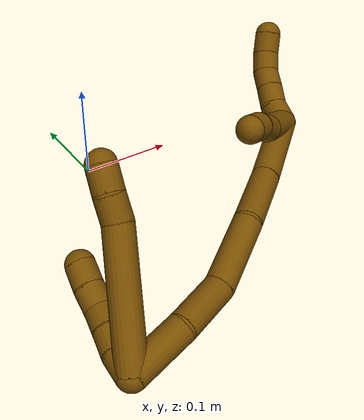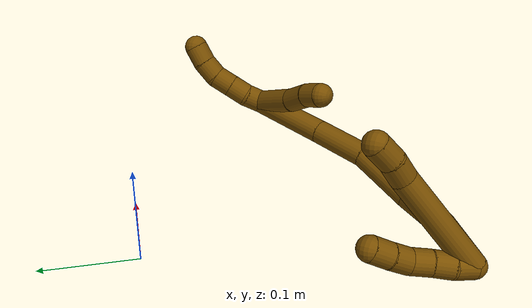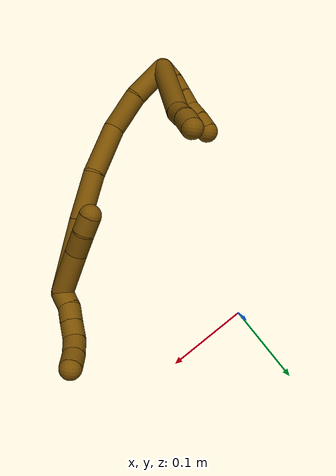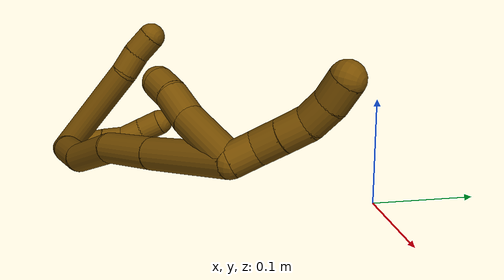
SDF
<sdf version="1.7">
 <world name="default">
  <model name="12">
   <static>0</static>
   <link name="12">
    <collision name="collision-cylinder-e_1_2_8">
     <pose>0.026532 0.038018 -0.026238 -2.17488 0.521361 -0.940384</pose>
     <geometry><cylinder><radius>0.0125</radius><length>0.106541</length></cylinder></geometry>
     <surface>
      <friction><ode><mu>1.16</mu><mu2>1.16</mu2><slip1>0</slip1><slip2>0</slip2></ode></friction>
      <contact><ode><kp>1e+06</kp><kd>1</kd><max_vel>0</max_vel><min_depth>0.001</min_depth></ode></contact>
     </surface>
    </collision>
    <visual name="visual-cylinder-e_1_2_8">
     <pose>0.026532 0.038018 -0.026238 -2.17488 0.521361 -0.940384</pose>
     <geometry><cylinder><radius>0.0125</radius><length>0.106541</length></cylinder></geometry>
     <material><ambient>0.466667 0.301961 0 1</ambient></material>
    </visual>
    <collision name="collision-cylinder-e_2_8_9">
     <pose>0.057819 0.085279 -0.055458 -1.88287 0.45527 -0.616033</pose>
     <geometry><cylinder><radius>0.0125</radius><length>0.021627</length></cylinder></geometry>
     <surface>
      <friction><ode><mu>1.16</mu><mu2>1.16</mu2><slip1>0</slip1><slip2>0</slip2></ode></friction>
      <contact><ode><kp>1e+06</kp><kd>1</kd><max_vel>0</max_vel><min_depth>0.001</min_depth></ode></contact>
     </surface>
    </collision>
    <visual name="visual-cylinder-e_2_8_9">
     <pose>0.057819 0.085279 -0.055458 -1.88287 0.45527 -0.616033</pose>
     <geometry><cylinder><radius>0.0125</radius><length>0.021627</length></cylinder></geometry>
     <material><ambient>0.466667 0.301961 0 1</ambient></material>
    </visual>
    <collision name="collision-cylinder-e_3_9_6">
     <pose>0.066629 0.103424 -0.063284 -2.06914 0.380696 -0.627029</pose>
     <geometry><cylinder><radius>0.0125</radius><length>0.021832</length></cylinder></geometry>
     <surface>
      <friction><ode><mu>1.16</mu><mu2>1.16</mu2><slip1>0</slip1><slip2>0</slip2></ode></friction>
      <contact><ode><kp>1e+06</kp><kd>1</kd><max_vel>0</max_vel><min_depth>0.001</min_depth></ode></contact>
     </surface>
    </collision>
    <visual name="visual-cylinder-e_3_9_6">
     <pose>0.066629 0.103424 -0.063284 -2.06914 0.380696 -0.627029</pose>
     <geometry><cylinder><radius>0.0125</radius><length>0.021832</length></cylinder></geometry>
     <material><ambient>0.466667 0.301961 0 1</ambient></material>
    </visual>
    <collision name="collision-cylinder-e_1_2_10">
     <pose>-0.002752 0.006932 -0.006661 -2.33628 -0.278808 0.636472</pose>
     <geometry><cylinder><radius>0.0125</radius><length>0.02</length></cylinder></geometry>
     <surface>
      <friction><ode><mu>1.16</mu><mu2>1.16</mu2><slip1>0</slip1><slip2>0</slip2></ode></friction>
      <contact><ode><kp>1e+06</kp><kd>1</kd><max_vel>0</max_vel><min_depth>0.001</min_depth></ode></contact>
     </surface>
    </collision>
    <visual name="visual-cylinder-e_1_2_10">
     <pose>-0.002752 0.006932 -0.006661 -2.33628 -0.278808 0.636472</pose>
     <geometry><cylinder><radius>0.0125</radius><length>0.02</length></cylinder></geometry>
     <material><ambient>0.466667 0.301961 0 1</ambient></material>
    </visual>
    <collision name="collision-cylinder-e_2_10_11">
     <pose>-0.006867 0.020219 -0.020922 -2.44515 -0.136739 0.372885</pose>
     <geometry><cylinder><radius>0.0125</radius><length>0.02</length></cylinder></geometry>
     <surface>
      <friction><ode><mu>1.16</mu><mu2>1.16</mu2><slip1>0</slip1><slip2>0</slip2></ode></friction>
      <contact><ode><kp>1e+06</kp><kd>1</kd><max_vel>0</max_vel><min_depth>0.001</min_depth></ode></contact>
     </surface>
    </collision>
    <visual name="visual-cylinder-e_2_10_11">
     <pose>-0.006867 0.020219 -0.020922 -2.44515 -0.136739 0.372885</pose>
     <geometry><cylinder><radius>0.0125</radius><length>0.02</length></cylinder></geometry>
     <material><ambient>0.466667 0.301961 0 1</ambient></material>
    </visual>
    <collision name="collision-cylinder-e_3_11_12">
     <pose>-0.010182 0.032542 -0.036305 -2.48741 -0.19639 0.565177</pose>
     <geometry><cylinder><radius>0.0125</radius><length>0.02</length></cylinder></geometry>
     <surface>
      <friction><ode><mu>1.16</mu><mu2>1.16</mu2><slip1>0</slip1><slip2>0</slip2></ode></friction>
      <contact><ode><kp>1e+06</kp><kd>1</kd><max_vel>0</max_vel><min_depth>0.001</min_depth></ode></contact>
     </surface>
    </collision>
    <visual name="visual-cylinder-e_3_11_12">
     <pose>-0.010182 0.032542 -0.036305 -2.48741 -0.19639 0.565177</pose>
     <geometry><cylinder><radius>0.0125</radius><length>0.02</length></cylinder></geometry>
     <material><ambient>0.466667 0.301961 0 1</ambient></material>
    </visual>
    <collision name="collision-cylinder-e_4_12_13">
     <pose>-0.01222 0.046637 -0.049915 -2.19283 -0.0087 0.016943</pose>
     <geometry><cylinder><radius>0.0125</radius><length>0.02</length></cylinder></geometry>
     <surface>
      <friction><ode><mu>1.16</mu><mu2>1.16</mu2><slip1>0</slip1><slip2>0</slip2></ode></friction>
      <contact><ode><kp>1e+06</kp><kd>1</kd><max_vel>0</max_vel><min_depth>0.001</min_depth></ode></contact>
     </surface>
    </collision>
    <visual name="visual-cylinder-e_4_12_13">
     <pose>-0.01222 0.046637 -0.049915 -2.19283 -0.0087 0.016943</pose>
     <geometry><cylinder><radius>0.0125</radius><length>0.02</length></cylinder></geometry>
     <material><ambient>0.466667 0.301961 0 1</ambient></material>
    </visual>
    <collision name="collision-cylinder-e_5_13_5">
     <pose>-0.011856 0.062477 -0.062089 -2.25935 0.045092 -0.095447</pose>
     <geometry><cylinder><radius>0.0125</radius><length>0.02</length></cylinder></geometry>
     <surface>
      <friction><ode><mu>1.16</mu><mu2>1.16</mu2><slip1>0</slip1><slip2>0</slip2></ode></friction>
      <contact><ode><kp>1e+06</kp><kd>1</kd><max_vel>0</max_vel><min_depth>0.001</min_depth></ode></contact>
     </surface>
    </collision>
    <visual name="visual-cylinder-e_5_13_5">
     <pose>-0.011856 0.062477 -0.062089 -2.25935 0.045092 -0.095447</pose>
     <geometry><cylinder><radius>0.0125</radius><length>0.02</length></cylinder></geometry>
     <material><ambient>0.466667 0.301961 0 1</ambient></material>
    </visual>
    <collision name="collision-cylinder-e_1_2_14">
     <pose>0.01557 -0.005184 -0.019125 2.87688 0.666015 2.40674</pose>
     <geometry><cylinder><radius>0.0125</radius><length>0.050401</length></cylinder></geometry>
     <surface>
      <friction><ode><mu>1.16</mu><mu2>1.16</mu2><slip1>0</slip1><slip2>0</slip2></ode></friction>
      <contact><ode><kp>1e+06</kp><kd>1</kd><max_vel>0</max_vel><min_depth>0.001</min_depth></ode></contact>
     </surface>
    </collision>
    <visual name="visual-cylinder-e_1_2_14">
     <pose>0.01557 -0.005184 -0.019125 2.87688 0.666015 2.40674</pose>
     <geometry><cylinder><radius>0.0125</radius><length>0.050401</length></cylinder></geometry>
     <material><ambient>0.466667 0.301961 0 1</ambient></material>
    </visual>
    <collision name="collision-cylinder-e_2_14_15">
     <pose>0.041191 -0.014997 -0.058955 2.92165 0.442378 2.22872</pose>
     <geometry><cylinder><radius>0.0125</radius><length>0.046953</length></cylinder></geometry>
     <surface>
      <friction><ode><mu>1.16</mu><mu2>1.16</mu2><slip1>0</slip1><slip2>0</slip2></ode></friction>
      <contact><ode><kp>1e+06</kp><kd>1</kd><max_vel>0</max_vel><min_depth>0.001</min_depth></ode></contact>
     </surface>
    </collision>
    <visual name="visual-cylinder-e_2_14_15">
     <pose>0.041191 -0.014997 -0.058955 2.92165 0.442378 2.22872</pose>
     <geometry><cylinder><radius>0.0125</radius><length>0.046953</length></cylinder></geometry>
     <material><ambient>0.466667 0.301961 0 1</ambient></material>
    </visual>
    <collision name="collision-cylinder-e_3_15_16">
     <pose>0.067136 -0.015413 -0.106388 -2.98527 0.531152 -2.58086</pose>
     <geometry><cylinder><radius>0.0125</radius><length>0.062762</length></cylinder></geometry>
     <surface>
      <friction><ode><mu>1.16</mu><mu2>1.16</mu2><slip1>0</slip1><slip2>0</slip2></ode></friction>
      <contact><ode><kp>1e+06</kp><kd>1</kd><max_vel>0</max_vel><min_depth>0.001</min_depth></ode></contact>
     </surface>
    </collision>
    <visual name="visual-cylinder-e_3_15_16">
     <pose>0.067136 -0.015413 -0.106388 -2.98527 0.531152 -2.58086</pose>
     <geometry><cylinder><radius>0.0125</radius><length>0.062762</length></cylinder></geometry>
     <material><ambient>0.466667 0.301961 0 1</ambient></material>
    </visual>
    <collision name="collision-cylinder-e_4_16_17">
     <pose>0.091237 -0.009543 -0.160513 -3.08115 0.290501 -2.73402</pose>
     <geometry><cylinder><radius>0.0125</radius><length>0.057296</length></cylinder></geometry>
     <surface>
      <friction><ode><mu>1.16</mu><mu2>1.16</mu2><slip1>0</slip1><slip2>0</slip2></ode></friction>
      <contact><ode><kp>1e+06</kp><kd>1</kd><max_vel>0</max_vel><min_depth>0.001</min_depth></ode></contact>
     </surface>
    </collision>
    <visual name="visual-cylinder-e_4_16_17">
     <pose>0.091237 -0.009543 -0.160513 -3.08115 0.290501 -2.73402</pose>
     <geometry><cylinder><radius>0.0125</radius><length>0.057296</length></cylinder></geometry>
     <material><ambient>0.466667 0.301961 0 1</ambient></material>
    </visual>
    <collision name="collision-cylinder-e_5_17_1">
     <pose>0.110658 -0.003835 -0.227445 -3.03952 0.275046 -2.43442</pose>
     <geometry><cylinder><radius>0.0125</radius><length>0.082588</length></cylinder></geometry>
     <surface>
      <friction><ode><mu>1.16</mu><mu2>1.16</mu2><slip1>0</slip1><slip2>0</slip2></ode></friction>
      <contact><ode><kp>1e+06</kp><kd>1</kd><max_vel>0</max_vel><min_depth>0.001</min_depth></ode></contact>
     </surface>
    </collision>
    <visual name="visual-cylinder-e_5_17_1">
     <pose>0.110658 -0.003835 -0.227445 -3.03952 0.275046 -2.43442</pose>
     <geometry><cylinder><radius>0.0125</radius><length>0.082588</length></cylinder></geometry>
     <material><ambient>0.466667 0.301961 0 1</ambient></material>
    </visual>
    <collision name="collision-cylinder-e_1_1_18">
     <pose>0.122596 0.00789 -0.273349 -2.26336 0.072399 -0.153902</pose>
     <geometry><cylinder><radius>0.0125</radius><length>0.02</length></cylinder></geometry>
     <surface>
      <friction><ode><mu>1.16</mu><mu2>1.16</mu2><slip1>0</slip1><slip2>0</slip2></ode></friction>
      <contact><ode><kp>1e+06</kp><kd>1</kd><max_vel>0</max_vel><min_depth>0.001</min_depth></ode></contact>
     </surface>
    </collision>
    <visual name="visual-cylinder-e_1_1_18">
     <pose>0.122596 0.00789 -0.273349 -2.26336 0.072399 -0.153902</pose>
     <geometry><cylinder><radius>0.0125</radius><length>0.02</length></cylinder></geometry>
     <material><ambient>0.466667 0.301961 0 1</ambient></material>
    </visual>
    <collision name="collision-cylinder-e_2_18_19">
     <pose>0.126071 0.021666 -0.287148 -2.45427 0.278753 -0.747199</pose>
     <geometry><cylinder><radius>0.0125</radius><length>0.02</length></cylinder></geometry>
     <surface>
      <friction><ode><mu>1.16</mu><mu2>1.16</mu2><slip1>0</slip1><slip2>0</slip2></ode></friction>
      <contact><ode><kp>1e+06</kp><kd>1</kd><max_vel>0</max_vel><min_depth>0.001</min_depth></ode></contact>
     </surface>
    </collision>
    <visual name="visual-cylinder-e_2_18_19">
     <pose>0.126071 0.021666 -0.287148 -2.45427 0.278753 -0.747199</pose>
     <geometry><cylinder><radius>0.0125</radius><length>0.02</length></cylinder></geometry>
     <material><ambient>0.466667 0.301961 0 1</ambient></material>
    </visual>
    <collision name="collision-cylinder-e_3_19_20">
     <pose>0.131443 0.034131 -0.301833 -2.42131 0.265165 -0.680759</pose>
     <geometry><cylinder><radius>0.0125</radius><length>0.02</length></cylinder></geometry>
     <surface>
      <friction><ode><mu>1.16</mu><mu2>1.16</mu2><slip1>0</slip1><slip2>0</slip2></ode></friction>
      <contact><ode><kp>1e+06</kp><kd>1</kd><max_vel>0</max_vel><min_depth>0.001</min_depth></ode></contact>
     </surface>
    </collision>
    <visual name="visual-cylinder-e_3_19_20">
     <pose>0.131443 0.034131 -0.301833 -2.42131 0.265165 -0.680759</pose>
     <geometry><cylinder><radius>0.0125</radius><length>0.02</length></cylinder></geometry>
     <material><ambient>0.466667 0.301961 0 1</ambient></material>
    </visual>
    <collision name="collision-cylinder-e_4_20_21">
     <pose>0.139424 0.046615 -0.314904 -2.33099 0.565728 -1.19085</pose>
     <geometry><cylinder><radius>0.0125</radius><length>0.02</length></cylinder></geometry>
     <surface>
      <friction><ode><mu>1.16</mu><mu2>1.16</mu2><slip1>0</slip1><slip2>0</slip2></ode></friction>
      <contact><ode><kp>1e+06</kp><kd>1</kd><max_vel>0</max_vel><min_depth>0.001</min_depth></ode></contact>
     </surface>
    </collision>
    <visual name="visual-cylinder-e_4_20_21">
     <pose>0.139424 0.046615 -0.314904 -2.33099 0.565728 -1.19085</pose>
     <geometry><cylinder><radius>0.0125</radius><length>0.02</length></cylinder></geometry>
     <material><ambient>0.466667 0.301961 0 1</ambient></material>
    </visual>
    <collision name="collision-cylinder-e_5_21_4">
     <pose>0.151667 0.058457 -0.325178 -2.23236 0.758995 -1.36884</pose>
     <geometry><cylinder><radius>0.0125</radius><length>0.02</length></cylinder></geometry>
     <surface>
      <friction><ode><mu>1.16</mu><mu2>1.16</mu2><slip1>0</slip1><slip2>0</slip2></ode></friction>
      <contact><ode><kp>1e+06</kp><kd>1</kd><max_vel>0</max_vel><min_depth>0.001</min_depth></ode></contact>
     </surface>
    </collision>
    <visual name="visual-cylinder-e_5_21_4">
     <pose>0.151667 0.058457 -0.325178 -2.23236 0.758995 -1.36884</pose>
     <geometry><cylinder><radius>0.0125</radius><length>0.02</length></cylinder></geometry>
     <material><ambient>0.466667 0.301961 0 1</ambient></material>
    </visual>
    <collision name="collision-cylinder-e_1_1_22">
     <pose>0.122898 0.00867 -0.242335 -0.330496 0.039332 -0.00656</pose>
     <geometry><cylinder><radius>0.0125</radius><length>0.052152</length></cylinder></geometry>
     <surface>
      <friction><ode><mu>1.16</mu><mu2>1.16</mu2><slip1>0</slip1><slip2>0</slip2></ode></friction>
      <contact><ode><kp>1e+06</kp><kd>1</kd><max_vel>0</max_vel><min_depth>0.001</min_depth></ode></contact>
     </surface>
    </collision>
    <visual name="visual-cylinder-e_1_1_22">
     <pose>0.122898 0.00867 -0.242335 -0.330496 0.039332 -0.00656</pose>
     <geometry><cylinder><radius>0.0125</radius><length>0.052152</length></cylinder></geometry>
     <material><ambient>0.466667 0.301961 0 1</ambient></material>
    </visual>
    <collision name="collision-cylinder-e_2_22_23">
     <pose>0.126043 0.023016 -0.205547 -0.451718 0.155799 -0.035868</pose>
     <geometry><cylinder><radius>0.0125</radius><length>0.027321</length></cylinder></geometry>
     <surface>
      <friction><ode><mu>1.16</mu><mu2>1.16</mu2><slip1>0</slip1><slip2>0</slip2></ode></friction>
      <contact><ode><kp>1e+06</kp><kd>1</kd><max_vel>0</max_vel><min_depth>0.001</min_depth></ode></contact>
     </surface>
    </collision>
    <visual name="visual-cylinder-e_2_22_23">
     <pose>0.126043 0.023016 -0.205547 -0.451718 0.155799 -0.035868</pose>
     <geometry><cylinder><radius>0.0125</radius><length>0.027321</length></cylinder></geometry>
     <material><ambient>0.466667 0.301961 0 1</ambient></material>
    </visual>
    <collision name="collision-cylinder-e_3_23_3">
     <pose>0.128089 0.032297 -0.183719 -0.336659 -0.007167 0.001218</pose>
     <geometry><cylinder><radius>0.0125</radius><length>0.020527</length></cylinder></geometry>
     <surface>
      <friction><ode><mu>1.16</mu><mu2>1.16</mu2><slip1>0</slip1><slip2>0</slip2></ode></friction>
      <contact><ode><kp>1e+06</kp><kd>1</kd><max_vel>0</max_vel><min_depth>0.001</min_depth></ode></contact>
     </surface>
    </collision>
    <visual name="visual-cylinder-e_3_23_3">
     <pose>0.128089 0.032297 -0.183719 -0.336659 -0.007167 0.001218</pose>
     <geometry><cylinder><radius>0.0125</radius><length>0.020527</length></cylinder></geometry>
     <material><ambient>0.466667 0.301961 0 1</ambient></material>
    </visual>
    <collision name="collision-sphere-3">
     <pose>0.128016 0.035687 -0.174032 0 -0 0</pose>
     <geometry><sphere><radius>0.0125</radius></sphere></geometry>
     <surface>
      <friction><ode><mu>1.16</mu><mu2>1.16</mu2><slip1>0</slip1><slip2>0</slip2></ode></friction>
      <contact><ode><kp>1e+06</kp><kd>1</kd><max_vel>0</max_vel><min_depth>0.001</min_depth></ode></contact>
     </surface>
    </collision>
    <visual name="visual-sphere-3">
     <pose>0.128016 0.035687 -0.174032 0 -0 0</pose>
     <geometry><sphere><radius>0.0125</radius></sphere></geometry>
     <material><ambient>0.466667 0.301961 0 1</ambient></material>
    </visual>
    <collision name="collision-sphere-23">
     <pose>0.128163 0.028907 -0.193406 0 -0 0</pose>
     <geometry><sphere><radius>0.0125</radius></sphere></geometry>
     <surface>
      <friction><ode><mu>1.16</mu><mu2>1.16</mu2><slip1>0</slip1><slip2>0</slip2></ode></friction>
      <contact><ode><kp>1e+06</kp><kd>1</kd><max_vel>0</max_vel><min_depth>0.001</min_depth></ode></contact>
     </surface>
    </collision>
    <visual name="visual-sphere-23">
     <pose>0.128163 0.028907 -0.193406 0 -0 0</pose>
     <geometry><sphere><radius>0.0125</radius></sphere></geometry>
     <material><ambient>0.466667 0.301961 0 1</ambient></material>
    </visual>
    <collision name="collision-sphere-22">
     <pose>0.123924 0.017125 -0.217689 0 -0 0</pose>
     <geometry><sphere><radius>0.0125</radius></sphere></geometry>
     <surface>
      <friction><ode><mu>1.16</mu><mu2>1.16</mu2><slip1>0</slip1><slip2>0</slip2></ode></friction>
      <contact><ode><kp>1e+06</kp><kd>1</kd><max_vel>0</max_vel><min_depth>0.001</min_depth></ode></contact>
     </surface>
    </collision>
    <visual name="visual-sphere-22">
     <pose>0.123924 0.017125 -0.217689 0 -0 0</pose>
     <geometry><sphere><radius>0.0125</radius></sphere></geometry>
     <material><ambient>0.466667 0.301961 0 1</ambient></material>
    </visual>
    <collision name="collision-sphere-4">
     <pose>0.158549 0.064182 -0.329635 0 -0 0</pose>
     <geometry><sphere><radius>0.0125</radius></sphere></geometry>
     <surface>
      <friction><ode><mu>1.16</mu><mu2>1.16</mu2><slip1>0</slip1><slip2>0</slip2></ode></friction>
      <contact><ode><kp>1e+06</kp><kd>1</kd><max_vel>0</max_vel><min_depth>0.001</min_depth></ode></contact>
     </surface>
    </collision>
    <visual name="visual-sphere-4">
     <pose>0.158549 0.064182 -0.329635 0 -0 0</pose>
     <geometry><sphere><radius>0.0125</radius></sphere></geometry>
     <material><ambient>0.466667 0.301961 0 1</ambient></material>
    </visual>
    <collision name="collision-sphere-21">
     <pose>0.144785 0.052733 -0.320721 0 -0 0</pose>
     <geometry><sphere><radius>0.0125</radius></sphere></geometry>
     <surface>
      <friction><ode><mu>1.16</mu><mu2>1.16</mu2><slip1>0</slip1><slip2>0</slip2></ode></friction>
      <contact><ode><kp>1e+06</kp><kd>1</kd><max_vel>0</max_vel><min_depth>0.001</min_depth></ode></contact>
     </surface>
    </collision>
    <visual name="visual-sphere-21">
     <pose>0.144785 0.052733 -0.320721 0 -0 0</pose>
     <geometry><sphere><radius>0.0125</radius></sphere></geometry>
     <material><ambient>0.466667 0.301961 0 1</ambient></material>
    </visual>
    <collision name="collision-sphere-20">
     <pose>0.134064 0.040497 -0.309087 0 -0 0</pose>
     <geometry><sphere><radius>0.0125</radius></sphere></geometry>
     <surface>
      <friction><ode><mu>1.16</mu><mu2>1.16</mu2><slip1>0</slip1><slip2>0</slip2></ode></friction>
      <contact><ode><kp>1e+06</kp><kd>1</kd><max_vel>0</max_vel><min_depth>0.001</min_depth></ode></contact>
     </surface>
    </collision>
    <visual name="visual-sphere-20">
     <pose>0.134064 0.040497 -0.309087 0 -0 0</pose>
     <geometry><sphere><radius>0.0125</radius></sphere></geometry>
     <material><ambient>0.466667 0.301961 0 1</ambient></material>
    </visual>
    <collision name="collision-sphere-11">
     <pose>-0.00823 0.026574 -0.028522 0 -0 0</pose>
     <geometry><sphere><radius>0.0125</radius></sphere></geometry>
     <surface>
      <friction><ode><mu>1.16</mu><mu2>1.16</mu2><slip1>0</slip1><slip2>0</slip2></ode></friction>
      <contact><ode><kp>1e+06</kp><kd>1</kd><max_vel>0</max_vel><min_depth>0.001</min_depth></ode></contact>
     </surface>
    </collision>
    <visual name="visual-sphere-11">
     <pose>-0.00823 0.026574 -0.028522 0 -0 0</pose>
     <geometry><sphere><radius>0.0125</radius></sphere></geometry>
     <material><ambient>0.466667 0.301961 0 1</ambient></material>
    </visual>
    <collision name="collision-sphere-10">
     <pose>-0.005504 0.013864 -0.013323 0 -0 0</pose>
     <geometry><sphere><radius>0.0125</radius></sphere></geometry>
     <surface>
      <friction><ode><mu>1.16</mu><mu2>1.16</mu2><slip1>0</slip1><slip2>0</slip2></ode></friction>
      <contact><ode><kp>1e+06</kp><kd>1</kd><max_vel>0</max_vel><min_depth>0.001</min_depth></ode></contact>
     </surface>
    </collision>
    <visual name="visual-sphere-10">
     <pose>-0.005504 0.013864 -0.013323 0 -0 0</pose>
     <geometry><sphere><radius>0.0125</radius></sphere></geometry>
     <material><ambient>0.466667 0.301961 0 1</ambient></material>
    </visual>
    <collision name="collision-sphere-6">
     <pose>0.070686 0.112326 -0.068128 0 -0 0</pose>
     <geometry><sphere><radius>0.0125</radius></sphere></geometry>
     <surface>
      <friction><ode><mu>1.16</mu><mu2>1.16</mu2><slip1>0</slip1><slip2>0</slip2></ode></friction>
      <contact><ode><kp>1e+06</kp><kd>1</kd><max_vel>0</max_vel><min_depth>0.001</min_depth></ode></contact>
     </surface>
    </collision>
    <visual name="visual-sphere-6">
     <pose>0.070686 0.112326 -0.068128 0 -0 0</pose>
     <geometry><sphere><radius>0.0125</radius></sphere></geometry>
     <material><ambient>0.466667 0.301961 0 1</ambient></material>
    </visual>
    <collision name="collision-sphere-9">
     <pose>0.062573 0.094522 -0.05844 0 -0 0</pose>
     <geometry><sphere><radius>0.0125</radius></sphere></geometry>
     <surface>
      <friction><ode><mu>1.16</mu><mu2>1.16</mu2><slip1>0</slip1><slip2>0</slip2></ode></friction>
      <contact><ode><kp>1e+06</kp><kd>1</kd><max_vel>0</max_vel><min_depth>0.001</min_depth></ode></contact>
     </surface>
    </collision>
    <visual name="visual-sphere-9">
     <pose>0.062573 0.094522 -0.05844 0 -0 0</pose>
     <geometry><sphere><radius>0.0125</radius></sphere></geometry>
     <material><ambient>0.466667 0.301961 0 1</ambient></material>
    </visual>
    <collision name="collision-sphere-2">
     <geometry><sphere><radius>0.0125</radius></sphere></geometry>
     <surface>
      <friction><ode><mu>1.16</mu><mu2>1.16</mu2><slip1>0</slip1><slip2>0</slip2></ode></friction>
      <contact><ode><kp>1e+06</kp><kd>1</kd><max_vel>0</max_vel><min_depth>0.001</min_depth></ode></contact>
     </surface>
    </collision>
    <visual name="visual-sphere-2">
     <geometry><sphere><radius>0.0125</radius></sphere></geometry>
     <material><ambient>0.466667 0.301961 0 1</ambient></material>
    </visual>
    <collision name="collision-sphere-19">
     <pose>0.128823 0.027766 -0.29458 0 -0 0</pose>
     <geometry><sphere><radius>0.0125</radius></sphere></geometry>
     <surface>
      <friction><ode><mu>1.16</mu><mu2>1.16</mu2><slip1>0</slip1><slip2>0</slip2></ode></friction>
      <contact><ode><kp>1e+06</kp><kd>1</kd><max_vel>0</max_vel><min_depth>0.001</min_depth></ode></contact>
     </surface>
    </collision>
    <visual name="visual-sphere-19">
     <pose>0.128823 0.027766 -0.29458 0 -0 0</pose>
     <geometry><sphere><radius>0.0125</radius></sphere></geometry>
     <material><ambient>0.466667 0.301961 0 1</ambient></material>
    </visual>
    <collision name="collision-sphere-8">
     <pose>0.053064 0.076036 -0.052476 0 -0 0</pose>
     <geometry><sphere><radius>0.0125</radius></sphere></geometry>
     <surface>
      <friction><ode><mu>1.16</mu><mu2>1.16</mu2><slip1>0</slip1><slip2>0</slip2></ode></friction>
      <contact><ode><kp>1e+06</kp><kd>1</kd><max_vel>0</max_vel><min_depth>0.001</min_depth></ode></contact>
     </surface>
    </collision>
    <visual name="visual-sphere-8">
     <pose>0.053064 0.076036 -0.052476 0 -0 0</pose>
     <geometry><sphere><radius>0.0125</radius></sphere></geometry>
     <material><ambient>0.466667 0.301961 0 1</ambient></material>
    </visual>
    <collision name="collision-sphere-12">
     <pose>-0.012133 0.03851 -0.044088 0 -0 0</pose>
     <geometry><sphere><radius>0.0125</radius></sphere></geometry>
     <surface>
      <friction><ode><mu>1.16</mu><mu2>1.16</mu2><slip1>0</slip1><slip2>0</slip2></ode></friction>
      <contact><ode><kp>1e+06</kp><kd>1</kd><max_vel>0</max_vel><min_depth>0.001</min_depth></ode></contact>
     </surface>
    </collision>
    <visual name="visual-sphere-12">
     <pose>-0.012133 0.03851 -0.044088 0 -0 0</pose>
     <geometry><sphere><radius>0.0125</radius></sphere></geometry>
     <material><ambient>0.466667 0.301961 0 1</ambient></material>
    </visual>
    <collision name="collision-sphere-13">
     <pose>-0.012307 0.054764 -0.055741 0 -0 0</pose>
     <geometry><sphere><radius>0.0125</radius></sphere></geometry>
     <surface>
      <friction><ode><mu>1.16</mu><mu2>1.16</mu2><slip1>0</slip1><slip2>0</slip2></ode></friction>
      <contact><ode><kp>1e+06</kp><kd>1</kd><max_vel>0</max_vel><min_depth>0.001</min_depth></ode></contact>
     </surface>
    </collision>
    <visual name="visual-sphere-13">
     <pose>-0.012307 0.054764 -0.055741 0 -0 0</pose>
     <geometry><sphere><radius>0.0125</radius></sphere></geometry>
     <material><ambient>0.466667 0.301961 0 1</ambient></material>
    </visual>
    <collision name="collision-sphere-5">
     <pose>-0.011406 0.070191 -0.068437 0 -0 0</pose>
     <geometry><sphere><radius>0.0125</radius></sphere></geometry>
     <surface>
      <friction><ode><mu>1.16</mu><mu2>1.16</mu2><slip1>0</slip1><slip2>0</slip2></ode></friction>
      <contact><ode><kp>1e+06</kp><kd>1</kd><max_vel>0</max_vel><min_depth>0.001</min_depth></ode></contact>
     </surface>
    </collision>
    <visual name="visual-sphere-5">
     <pose>-0.011406 0.070191 -0.068437 0 -0 0</pose>
     <geometry><sphere><radius>0.0125</radius></sphere></geometry>
     <material><ambient>0.466667 0.301961 0 1</ambient></material>
    </visual>
    <collision name="collision-sphere-14">
     <pose>0.03114 -0.010368 -0.038249 0 -0 0</pose>
     <geometry><sphere><radius>0.0125</radius></sphere></geometry>
     <surface>
      <friction><ode><mu>1.16</mu><mu2>1.16</mu2><slip1>0</slip1><slip2>0</slip2></ode></friction>
      <contact><ode><kp>1e+06</kp><kd>1</kd><max_vel>0</max_vel><min_depth>0.001</min_depth></ode></contact>
     </surface>
    </collision>
    <visual name="visual-sphere-14">
     <pose>0.03114 -0.010368 -0.038249 0 -0 0</pose>
     <geometry><sphere><radius>0.0125</radius></sphere></geometry>
     <material><ambient>0.466667 0.301961 0 1</ambient></material>
    </visual>
    <collision name="collision-sphere-15">
     <pose>0.051241 -0.019626 -0.07966 0 -0 0</pose>
     <geometry><sphere><radius>0.0125</radius></sphere></geometry>
     <surface>
      <friction><ode><mu>1.16</mu><mu2>1.16</mu2><slip1>0</slip1><slip2>0</slip2></ode></friction>
      <contact><ode><kp>1e+06</kp><kd>1</kd><max_vel>0</max_vel><min_depth>0.001</min_depth></ode></contact>
     </surface>
    </collision>
    <visual name="visual-sphere-15">
     <pose>0.051241 -0.019626 -0.07966 0 -0 0</pose>
     <geometry><sphere><radius>0.0125</radius></sphere></geometry>
     <material><ambient>0.466667 0.301961 0 1</ambient></material>
    </visual>
    <collision name="collision-sphere-16">
     <pose>0.083031 -0.011201 -0.133115 0 -0 0</pose>
     <geometry><sphere><radius>0.0125</radius></sphere></geometry>
     <surface>
      <friction><ode><mu>1.16</mu><mu2>1.16</mu2><slip1>0</slip1><slip2>0</slip2></ode></friction>
      <contact><ode><kp>1e+06</kp><kd>1</kd><max_vel>0</max_vel><min_depth>0.001</min_depth></ode></contact>
     </surface>
    </collision>
    <visual name="visual-sphere-16">
     <pose>0.083031 -0.011201 -0.133115 0 -0 0</pose>
     <geometry><sphere><radius>0.0125</radius></sphere></geometry>
     <material><ambient>0.466667 0.301961 0 1</ambient></material>
    </visual>
    <collision name="collision-sphere-17">
     <pose>0.099443 -0.007885 -0.18791 0 -0 0</pose>
     <geometry><sphere><radius>0.0125</radius></sphere></geometry>
     <surface>
      <friction><ode><mu>1.16</mu><mu2>1.16</mu2><slip1>0</slip1><slip2>0</slip2></ode></friction>
      <contact><ode><kp>1e+06</kp><kd>1</kd><max_vel>0</max_vel><min_depth>0.001</min_depth></ode></contact>
     </surface>
    </collision>
    <visual name="visual-sphere-17">
     <pose>0.099443 -0.007885 -0.18791 0 -0 0</pose>
     <geometry><sphere><radius>0.0125</radius></sphere></geometry>
     <material><ambient>0.466667 0.301961 0 1</ambient></material>
    </visual>
    <collision name="collision-sphere-1">
     <pose>0.121873 0.000214 -0.266981 0 -0 0</pose>
     <geometry><sphere><radius>0.0125</radius></sphere></geometry>
     <surface>
      <friction><ode><mu>1.16</mu><mu2>1.16</mu2><slip1>0</slip1><slip2>0</slip2></ode></friction>
      <contact><ode><kp>1e+06</kp><kd>1</kd><max_vel>0</max_vel><min_depth>0.001</min_depth></ode></contact>
     </surface>
    </collision>
    <visual name="visual-sphere-1">
     <pose>0.121873 0.000214 -0.266981 0 -0 0</pose>
     <geometry><sphere><radius>0.0125</radius></sphere></geometry>
     <material><ambient>0.466667 0.301961 0 1</ambient></material>
    </visual>
    <collision name="collision-sphere-18">
     <pose>0.12332 0.015566 -0.279717 0 -0 0</pose>
     <geometry><sphere><radius>0.0125</radius></sphere></geometry>
     <surface>
      <friction><ode><mu>1.16</mu><mu2>1.16</mu2><slip1>0</slip1><slip2>0</slip2></ode></friction>
      <contact><ode><kp>1e+06</kp><kd>1</kd><max_vel>0</max_vel><min_depth>0.001</min_depth></ode></contact>
     </surface>
    </collision>
    <visual name="visual-sphere-18">
     <pose>0.12332 0.015566 -0.279717 0 -0 0</pose>
     <geometry><sphere><radius>0.0125</radius></sphere></geometry>
     <material><ambient>0.466667 0.301961 0 1</ambient></material>
    </visual>
    <inertial>
     <pose>0.069146 0.018469 -0.132477 0 -0 0</pose>
     <mass>0.75</mass>
     <inertia>
      <ixx>-9.2e-05</ixx>
      <ixy>0</ixy>
      <ixz>0</ixz>
      <iyy>1.3e-05</iyy>
      <iyz>0</iyz>
      <izz>-0.000226</izz>
     </inertia>
    </inertial>
   </link>
   <pose>-0.113563 -0.288543 0.037473 1.34451 -0.879515 -0.634764</pose>
  </model>
 </world>
</sdf>
